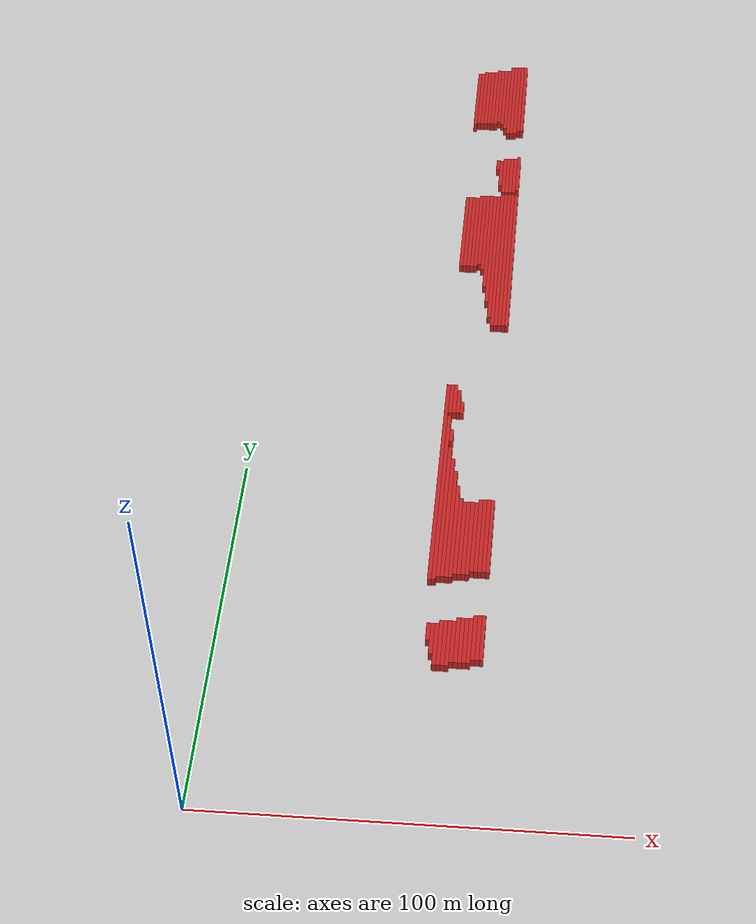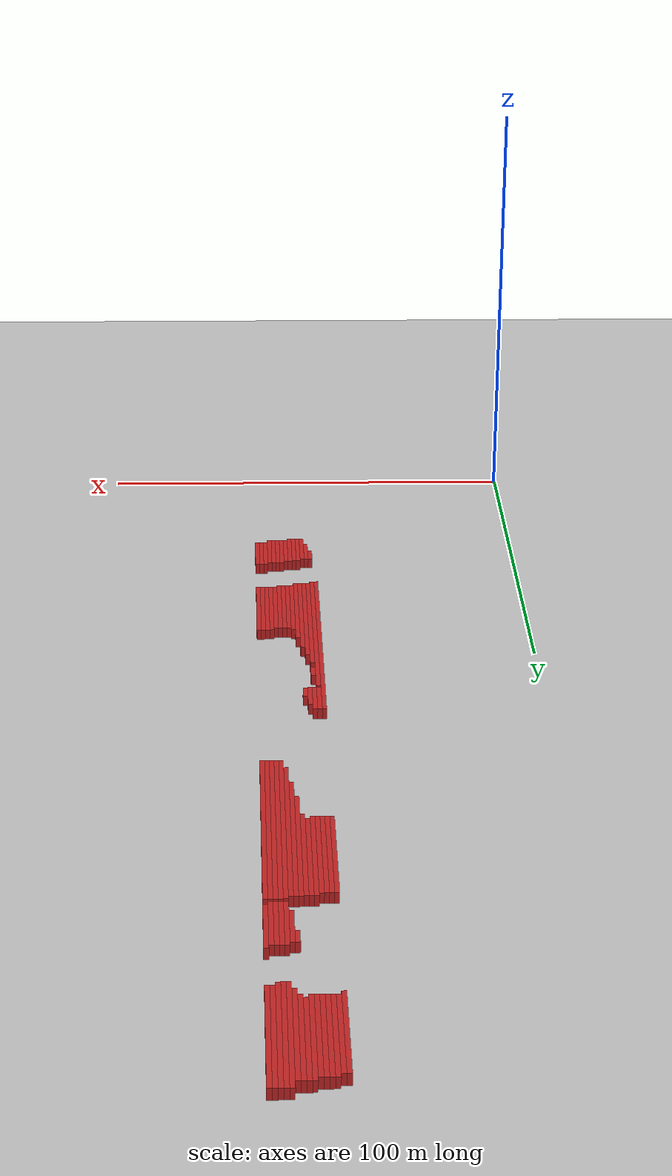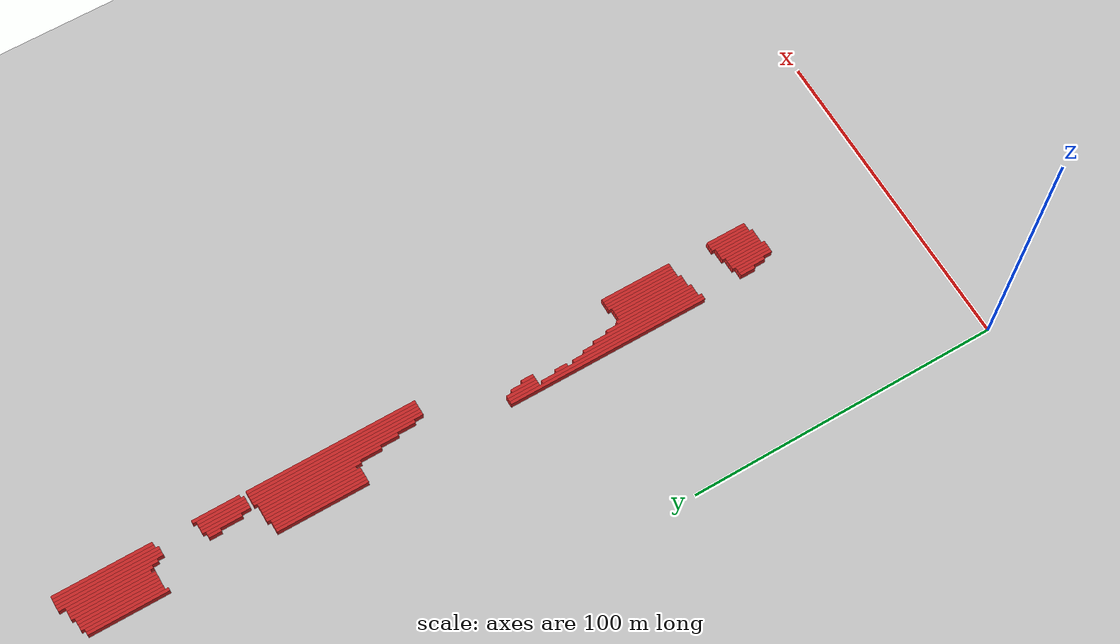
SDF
<sdf version="1.4">
 <world name="1_wall">
  <model name="ground_plane">
   <static>1</static>
   <link name="link">
    <collision name="collision">
     <geometry><plane><normal>0 0 1</normal><size>1000 1000</size></plane></geometry>
     <surface><friction><ode><mu>100</mu><mu2>50</mu2></ode></friction></surface>
    </collision>
    <visual name="visual">
     <cast_shadows>0</cast_shadows>
     <geometry><plane><normal>0 0 1</normal><size>10000 10000</size></plane></geometry>
     <material>
      <script><uri>file://media/materials/scripts/gazebo.material</uri><name>Gazebo/Grey</name></script>
     </material>
    </visual>
    <velocity_decay><linear>0</linear><angular>0</angular></velocity_decay>
   </link>
  </model>
  <model name="Wall_72">
   <static>1</static>
   <link name="Wall_72">
    <collision name="Wall_Collision_72">
     <geometry><box><size>65.0 1.0 2.5</size></box></geometry>
     <pose>0 0 1.25 0 -0 0</pose>
    </collision>
    <visual name="Wall_Visual_72">
     <pose>0 0 1.25 0 -0 0</pose>
     <geometry><box><size>65.0 1.0 2.5</size></box></geometry>
     <material>
      <script><uri>file://media/materials/scripts/gazebo.material</uri><name>Gazebo/Red</name></script>
     </material>
    </visual>
    <velocity_decay><linear>0</linear><angular>0</angular></velocity_decay>
    <pose>49.5 98.5 0 0 0 1.5707963267948966</pose>
   </link>
  </model>
  <model name="Wall_73">
   <static>1</static>
   <link name="Wall_73">
    <collision name="Wall_Collision_73">
     <geometry><box><size>29.0 1.0 2.5</size></box></geometry>
     <pose>0 0 1.25 0 -0 0</pose>
    </collision>
    <visual name="Wall_Visual_73">
     <pose>0 0 1.25 0 -0 0</pose>
     <geometry><box><size>29.0 1.0 2.5</size></box></geometry>
     <material>
      <script><uri>file://media/materials/scripts/gazebo.material</uri><name>Gazebo/Red</name></script>
     </material>
    </visual>
    <velocity_decay><linear>0</linear><angular>0</angular></velocity_decay>
    <pose>49.5 191.5 0 0 0 1.5707963267948966</pose>
   </link>
  </model>
  <model name="Wall_74">
   <static>1</static>
   <link name="Wall_74">
    <collision name="Wall_Collision_74">
     <geometry><box><size>25.0 1.0 2.5</size></box></geometry>
     <pose>0 0 1.25 0 -0 0</pose>
    </collision>
    <visual name="Wall_Visual_74">
     <pose>0 0 1.25 0 -0 0</pose>
     <geometry><box><size>25.0 1.0 2.5</size></box></geometry>
     <material>
      <script><uri>file://media/materials/scripts/gazebo.material</uri><name>Gazebo/Red</name></script>
     </material>
    </visual>
    <velocity_decay><linear>0</linear><angular>0</angular></velocity_decay>
    <pose>49.5 251.5 0 0 0 1.5707963267948966</pose>
   </link>
  </model>
  <model name="Wall_75">
   <static>1</static>
   <link name="Wall_75">
    <collision name="Wall_Collision_75">
     <geometry><box><size>5.0 1.0 2.5</size></box></geometry>
     <pose>0 0 1.25 0 -0 0</pose>
    </collision>
    <visual name="Wall_Visual_75">
     <pose>0 0 1.25 0 -0 0</pose>
     <geometry><box><size>5.0 1.0 2.5</size></box></geometry>
     <material>
      <script><uri>file://media/materials/scripts/gazebo.material</uri><name>Gazebo/Red</name></script>
     </material>
    </visual>
    <velocity_decay><linear>0</linear><angular>0</angular></velocity_decay>
    <pose>50.5 50.5 0 0 0 1.5707963267948966</pose>
   </link>
  </model>
  <model name="Wall_76">
   <static>1</static>
   <link name="Wall_76">
    <collision name="Wall_Collision_76">
     <geometry><box><size>54.0 1.0 2.5</size></box></geometry>
     <pose>0 0 1.25 0 -0 0</pose>
    </collision>
    <visual name="Wall_Visual_76">
     <pose>0 0 1.25 0 -0 0</pose>
     <geometry><box><size>54.0 1.0 2.5</size></box></geometry>
     <material>
      <script><uri>file://media/materials/scripts/gazebo.material</uri><name>Gazebo/Red</name></script>
     </material>
    </visual>
    <velocity_decay><linear>0</linear><angular>0</angular></velocity_decay>
    <pose>50.5 93.0 0 0 0 1.5707963267948966</pose>
   </link>
  </model>
  <model name="Wall_77">
   <static>1</static>
   <link name="Wall_77">
    <collision name="Wall_Collision_77">
     <geometry><box><size>10.0 1.0 2.5</size></box></geometry>
     <pose>0 0 1.25 0 -0 0</pose>
    </collision>
    <visual name="Wall_Visual_77">
     <pose>0 0 1.25 0 -0 0</pose>
     <geometry><box><size>10.0 1.0 2.5</size></box></geometry>
     <material>
      <script><uri>file://media/materials/scripts/gazebo.material</uri><name>Gazebo/Red</name></script>
     </material>
    </visual>
    <velocity_decay><linear>0</linear><angular>0</angular></velocity_decay>
    <pose>50.5 126.0 0 0 0 1.5707963267948966</pose>
   </link>
  </model>
  <model name="Wall_78">
   <static>1</static>
   <link name="Wall_78">
    <collision name="Wall_Collision_78">
     <geometry><box><size>29.0 1.0 2.5</size></box></geometry>
     <pose>0 0 1.25 0 -0 0</pose>
    </collision>
    <visual name="Wall_Visual_78">
     <pose>0 0 1.25 0 -0 0</pose>
     <geometry><box><size>29.0 1.0 2.5</size></box></geometry>
     <material>
      <script><uri>file://media/materials/scripts/gazebo.material</uri><name>Gazebo/Red</name></script>
     </material>
    </visual>
    <velocity_decay><linear>0</linear><angular>0</angular></velocity_decay>
    <pose>50.5 191.5 0 0 0 1.5707963267948966</pose>
   </link>
  </model>
  <model name="Wall_79">
   <static>1</static>
   <link name="Wall_79">
    <collision name="Wall_Collision_79">
     <geometry><box><size>24.0 1.0 2.5</size></box></geometry>
     <pose>0 0 1.25 0 -0 0</pose>
    </collision>
    <visual name="Wall_Visual_79">
     <pose>0 0 1.25 0 -0 0</pose>
     <geometry><box><size>24.0 1.0 2.5</size></box></geometry>
     <material>
      <script><uri>file://media/materials/scripts/gazebo.material</uri><name>Gazebo/Red</name></script>
     </material>
    </visual>
    <velocity_decay><linear>0</linear><angular>0</angular></velocity_decay>
    <pose>50.5 252.0 0 0 0 1.5707963267948966</pose>
   </link>
  </model>
  <model name="Wall_80">
   <static>1</static>
   <link name="Wall_80">
    <collision name="Wall_Collision_80">
     <geometry><box><size>9.0 1.0 2.5</size></box></geometry>
     <pose>0 0 1.25 0 -0 0</pose>
    </collision>
    <visual name="Wall_Visual_80">
     <pose>0 0 1.25 0 -0 0</pose>
     <geometry><box><size>9.0 1.0 2.5</size></box></geometry>
     <material>
      <script><uri>file://media/materials/scripts/gazebo.material</uri><name>Gazebo/Red</name></script>
     </material>
    </visual>
    <velocity_decay><linear>0</linear><angular>0</angular></velocity_decay>
    <pose>51.5 48.5 0 0 0 1.5707963267948966</pose>
   </link>
  </model>
  <model name="Wall_81">
   <static>1</static>
   <link name="Wall_81">
    <collision name="Wall_Collision_81">
     <geometry><box><size>42.0 1.0 2.5</size></box></geometry>
     <pose>0 0 1.25 0 -0 0</pose>
    </collision>
    <visual name="Wall_Visual_81">
     <pose>0 0 1.25 0 -0 0</pose>
     <geometry><box><size>42.0 1.0 2.5</size></box></geometry>
     <material>
      <script><uri>file://media/materials/scripts/gazebo.material</uri><name>Gazebo/Red</name></script>
     </material>
    </visual>
    <velocity_decay><linear>0</linear><angular>0</angular></velocity_decay>
    <pose>51.5 88.0 0 0 0 1.5707963267948966</pose>
   </link>
  </model>
  <model name="Wall_82">
   <static>1</static>
   <link name="Wall_82">
    <collision name="Wall_Collision_82">
     <geometry><box><size>4.0 1.0 2.5</size></box></geometry>
     <pose>0 0 1.25 0 -0 0</pose>
    </collision>
    <visual name="Wall_Visual_82">
     <pose>0 0 1.25 0 -0 0</pose>
     <geometry><box><size>4.0 1.0 2.5</size></box></geometry>
     <material>
      <script><uri>file://media/materials/scripts/gazebo.material</uri><name>Gazebo/Red</name></script>
     </material>
    </visual>
    <velocity_decay><linear>0</linear><angular>0</angular></velocity_decay>
    <pose>51.5 113.0 0 0 0 1.5707963267948966</pose>
   </link>
  </model>
  <model name="Wall_83">
   <static>1</static>
   <link name="Wall_83">
    <collision name="Wall_Collision_83">
     <geometry><box><size>10.0 1.0 2.5</size></box></geometry>
     <pose>0 0 1.25 0 -0 0</pose>
    </collision>
    <visual name="Wall_Visual_83">
     <pose>0 0 1.25 0 -0 0</pose>
     <geometry><box><size>10.0 1.0 2.5</size></box></geometry>
     <material>
      <script><uri>file://media/materials/scripts/gazebo.material</uri><name>Gazebo/Red</name></script>
     </material>
    </visual>
    <velocity_decay><linear>0</linear><angular>0</angular></velocity_decay>
    <pose>51.5 126.0 0 0 0 1.5707963267948966</pose>
   </link>
  </model>
  <model name="Wall_84">
   <static>1</static>
   <link name="Wall_84">
    <collision name="Wall_Collision_84">
     <geometry><box><size>29.0 1.0 2.5</size></box></geometry>
     <pose>0 0 1.25 0 -0 0</pose>
    </collision>
    <visual name="Wall_Visual_84">
     <pose>0 0 1.25 0 -0 0</pose>
     <geometry><box><size>29.0 1.0 2.5</size></box></geometry>
     <material>
      <script><uri>file://media/materials/scripts/gazebo.material</uri><name>Gazebo/Red</name></script>
     </material>
    </visual>
    <velocity_decay><linear>0</linear><angular>0</angular></velocity_decay>
    <pose>51.5 191.5 0 0 0 1.5707963267948966</pose>
   </link>
  </model>
  <model name="Wall_85">
   <static>1</static>
   <link name="Wall_85">
    <collision name="Wall_Collision_85">
     <geometry><box><size>25.0 1.0 2.5</size></box></geometry>
     <pose>0 0 1.25 0 -0 0</pose>
    </collision>
    <visual name="Wall_Visual_85">
     <pose>0 0 1.25 0 -0 0</pose>
     <geometry><box><size>25.0 1.0 2.5</size></box></geometry>
     <material>
      <script><uri>file://media/materials/scripts/gazebo.material</uri><name>Gazebo/Red</name></script>
     </material>
    </visual>
    <velocity_decay><linear>0</linear><angular>0</angular></velocity_decay>
    <pose>51.5 252.5 0 0 0 1.5707963267948966</pose>
   </link>
  </model>
  <model name="Wall_86">
   <static>1</static>
   <link name="Wall_86">
    <collision name="Wall_Collision_86">
     <geometry><box><size>12.0 1.0 2.5</size></box></geometry>
     <pose>0 0 1.25 0 -0 0</pose>
    </collision>
    <visual name="Wall_Visual_86">
     <pose>0 0 1.25 0 -0 0</pose>
     <geometry><box><size>12.0 1.0 2.5</size></box></geometry>
     <material>
      <script><uri>file://media/materials/scripts/gazebo.material</uri><name>Gazebo/Red</name></script>
     </material>
    </visual>
    <velocity_decay><linear>0</linear><angular>0</angular></velocity_decay>
    <pose>52.5 47.0 0 0 0 1.5707963267948966</pose>
   </link>
  </model>
  <model name="Wall_87">
   <static>1</static>
   <link name="Wall_87">
    <collision name="Wall_Collision_87">
     <geometry><box><size>38.0 1.0 2.5</size></box></geometry>
     <pose>0 0 1.25 0 -0 0</pose>
    </collision>
    <visual name="Wall_Visual_87">
     <pose>0 0 1.25 0 -0 0</pose>
     <geometry><box><size>38.0 1.0 2.5</size></box></geometry>
     <material>
      <script><uri>file://media/materials/scripts/gazebo.material</uri><name>Gazebo/Red</name></script>
     </material>
    </visual>
    <velocity_decay><linear>0</linear><angular>0</angular></velocity_decay>
    <pose>52.5 86.0 0 0 0 1.5707963267948966</pose>
   </link>
  </model>
  <model name="Wall_88">
   <static>1</static>
   <link name="Wall_88">
    <collision name="Wall_Collision_88">
     <geometry><box><size>8.0 1.0 2.5</size></box></geometry>
     <pose>0 0 1.25 0 -0 0</pose>
    </collision>
    <visual name="Wall_Visual_88">
     <pose>0 0 1.25 0 -0 0</pose>
     <geometry><box><size>8.0 1.0 2.5</size></box></geometry>
     <material>
      <script><uri>file://media/materials/scripts/gazebo.material</uri><name>Gazebo/Red</name></script>
     </material>
    </visual>
    <velocity_decay><linear>0</linear><angular>0</angular></velocity_decay>
    <pose>52.5 125.0 0 0 0 1.5707963267948966</pose>
   </link>
  </model>
  <model name="Wall_89">
   <static>1</static>
   <link name="Wall_89">
    <collision name="Wall_Collision_89">
     <geometry><box><size>29.0 1.0 2.5</size></box></geometry>
     <pose>0 0 1.25 0 -0 0</pose>
    </collision>
    <visual name="Wall_Visual_89">
     <pose>0 0 1.25 0 -0 0</pose>
     <geometry><box><size>29.0 1.0 2.5</size></box></geometry>
     <material>
      <script><uri>file://media/materials/scripts/gazebo.material</uri><name>Gazebo/Red</name></script>
     </material>
    </visual>
    <velocity_decay><linear>0</linear><angular>0</angular></velocity_decay>
    <pose>52.5 191.5 0 0 0 1.5707963267948966</pose>
   </link>
  </model>
  <model name="Wall_90">
   <static>1</static>
   <link name="Wall_90">
    <collision name="Wall_Collision_90">
     <geometry><box><size>25.0 1.0 2.5</size></box></geometry>
     <pose>0 0 1.25 0 -0 0</pose>
    </collision>
    <visual name="Wall_Visual_90">
     <pose>0 0 1.25 0 -0 0</pose>
     <geometry><box><size>25.0 1.0 2.5</size></box></geometry>
     <material>
      <script><uri>file://media/materials/scripts/gazebo.material</uri><name>Gazebo/Red</name></script>
     </material>
    </visual>
    <velocity_decay><linear>0</linear><angular>0</angular></velocity_decay>
    <pose>52.5 252.5 0 0 0 1.5707963267948966</pose>
   </link>
  </model>
  <model name="Wall_91">
   <static>1</static>
   <link name="Wall_91">
    <collision name="Wall_Collision_91">
     <geometry><box><size>13.0 1.0 2.5</size></box></geometry>
     <pose>0 0 1.25 0 -0 0</pose>
    </collision>
    <visual name="Wall_Visual_91">
     <pose>0 0 1.25 0 -0 0</pose>
     <geometry><box><size>13.0 1.0 2.5</size></box></geometry>
     <material>
      <script><uri>file://media/materials/scripts/gazebo.material</uri><name>Gazebo/Red</name></script>
     </material>
    </visual>
    <velocity_decay><linear>0</linear><angular>0</angular></velocity_decay>
    <pose>53.5 47.5 0 0 0 1.5707963267948966</pose>
   </link>
  </model>
  <model name="Wall_92">
   <static>1</static>
   <link name="Wall_92">
    <collision name="Wall_Collision_92">
     <geometry><box><size>34.0 1.0 2.5</size></box></geometry>
     <pose>0 0 1.25 0 -0 0</pose>
    </collision>
    <visual name="Wall_Visual_92">
     <pose>0 0 1.25 0 -0 0</pose>
     <geometry><box><size>34.0 1.0 2.5</size></box></geometry>
     <material>
      <script><uri>file://media/materials/scripts/gazebo.material</uri><name>Gazebo/Red</name></script>
     </material>
    </visual>
    <velocity_decay><linear>0</linear><angular>0</angular></velocity_decay>
    <pose>53.5 84.0 0 0 0 1.5707963267948966</pose>
   </link>
  </model>
  <model name="Wall_93">
   <static>1</static>
   <link name="Wall_93">
    <collision name="Wall_Collision_93">
     <geometry><box><size>4.0 1.0 2.5</size></box></geometry>
     <pose>0 0 1.25 0 -0 0</pose>
    </collision>
    <visual name="Wall_Visual_93">
     <pose>0 0 1.25 0 -0 0</pose>
     <geometry><box><size>4.0 1.0 2.5</size></box></geometry>
     <material>
      <script><uri>file://media/materials/scripts/gazebo.material</uri><name>Gazebo/Red</name></script>
     </material>
    </visual>
    <velocity_decay><linear>0</linear><angular>0</angular></velocity_decay>
    <pose>53.5 123.0 0 0 0 1.5707963267948966</pose>
   </link>
  </model>
  <model name="Wall_94">
   <static>1</static>
   <link name="Wall_94">
    <collision name="Wall_Collision_94">
     <geometry><box><size>30.0 1.0 2.5</size></box></geometry>
     <pose>0 0 1.25 0 -0 0</pose>
    </collision>
    <visual name="Wall_Visual_94">
     <pose>0 0 1.25 0 -0 0</pose>
     <geometry><box><size>30.0 1.0 2.5</size></box></geometry>
     <material>
      <script><uri>file://media/materials/scripts/gazebo.material</uri><name>Gazebo/Red</name></script>
     </material>
    </visual>
    <velocity_decay><linear>0</linear><angular>0</angular></velocity_decay>
    <pose>53.5 192.0 0 0 0 1.5707963267948966</pose>
   </link>
  </model>
  <model name="Wall_95">
   <static>1</static>
   <link name="Wall_95">
    <collision name="Wall_Collision_95">
     <geometry><box><size>25.0 1.0 2.5</size></box></geometry>
     <pose>0 0 1.25 0 -0 0</pose>
    </collision>
    <visual name="Wall_Visual_95">
     <pose>0 0 1.25 0 -0 0</pose>
     <geometry><box><size>25.0 1.0 2.5</size></box></geometry>
     <material>
      <script><uri>file://media/materials/scripts/gazebo.material</uri><name>Gazebo/Red</name></script>
     </material>
    </visual>
    <velocity_decay><linear>0</linear><angular>0</angular></velocity_decay>
    <pose>53.5 252.5 0 0 0 1.5707963267948966</pose>
   </link>
  </model>
  <model name="Wall_96">
   <static>1</static>
   <link name="Wall_96">
    <collision name="Wall_Collision_96">
     <geometry><box><size>13.0 1.0 2.5</size></box></geometry>
     <pose>0 0 1.25 0 -0 0</pose>
    </collision>
    <visual name="Wall_Visual_96">
     <pose>0 0 1.25 0 -0 0</pose>
     <geometry><box><size>13.0 1.0 2.5</size></box></geometry>
     <material>
      <script><uri>file://media/materials/scripts/gazebo.material</uri><name>Gazebo/Red</name></script>
     </material>
    </visual>
    <velocity_decay><linear>0</linear><angular>0</angular></velocity_decay>
    <pose>54.5 47.5 0 0 0 1.5707963267948966</pose>
   </link>
  </model>
  <model name="Wall_97">
   <static>1</static>
   <link name="Wall_97">
    <collision name="Wall_Collision_97">
     <geometry><box><size>29.0 1.0 2.5</size></box></geometry>
     <pose>0 0 1.25 0 -0 0</pose>
    </collision>
    <visual name="Wall_Visual_97">
     <pose>0 0 1.25 0 -0 0</pose>
     <geometry><box><size>29.0 1.0 2.5</size></box></geometry>
     <material>
      <script><uri>file://media/materials/scripts/gazebo.material</uri><name>Gazebo/Red</name></script>
     </material>
    </visual>
    <velocity_decay><linear>0</linear><angular>0</angular></velocity_decay>
    <pose>54.5 81.5 0 0 0 1.5707963267948966</pose>
   </link>
  </model>
  <model name="Wall_98">
   <static>1</static>
   <link name="Wall_98">
    <collision name="Wall_Collision_98">
     <geometry><box><size>29.0 1.0 2.5</size></box></geometry>
     <pose>0 0 1.25 0 -0 0</pose>
    </collision>
    <visual name="Wall_Visual_98">
     <pose>0 0 1.25 0 -0 0</pose>
     <geometry><box><size>29.0 1.0 2.5</size></box></geometry>
     <material>
      <script><uri>file://media/materials/scripts/gazebo.material</uri><name>Gazebo/Red</name></script>
     </material>
    </visual>
    <velocity_decay><linear>0</linear><angular>0</angular></velocity_decay>
    <pose>54.5 192.5 0 0 0 1.5707963267948966</pose>
   </link>
  </model>
  <model name="Wall_99">
   <static>1</static>
   <link name="Wall_99">
    <collision name="Wall_Collision_99">
     <geometry><box><size>25.0 1.0 2.5</size></box></geometry>
     <pose>0 0 1.25 0 -0 0</pose>
    </collision>
    <visual name="Wall_Visual_99">
     <pose>0 0 1.25 0 -0 0</pose>
     <geometry><box><size>25.0 1.0 2.5</size></box></geometry>
     <material>
      <script><uri>file://media/materials/scripts/gazebo.material</uri><name>Gazebo/Red</name></script>
     </material>
    </visual>
    <velocity_decay><linear>0</linear><angular>0</angular></velocity_decay>
    <pose>54.5 252.5 0 0 0 1.5707963267948966</pose>
   </link>
  </model>
  <model name="Wall_100">
   <static>1</static>
   <link name="Wall_100">
    <collision name="Wall_Collision_100">
     <geometry><box><size>13.0 1.0 2.5</size></box></geometry>
     <pose>0 0 1.25 0 -0 0</pose>
    </collision>
    <visual name="Wall_Visual_100">
     <pose>0 0 1.25 0 -0 0</pose>
     <geometry><box><size>13.0 1.0 2.5</size></box></geometry>
     <material>
      <script><uri>file://media/materials/scripts/gazebo.material</uri><name>Gazebo/Red</name></script>
     </material>
    </visual>
    <velocity_decay><linear>0</linear><angular>0</angular></velocity_decay>
    <pose>55.5 47.5 0 0 0 1.5707963267948966</pose>
   </link>
  </model>
  <model name="Wall_101">
   <static>1</static>
   <link name="Wall_101">
    <collision name="Wall_Collision_101">
     <geometry><box><size>24.0 1.0 2.5</size></box></geometry>
     <pose>0 0 1.25 0 -0 0</pose>
    </collision>
    <visual name="Wall_Visual_101">
     <pose>0 0 1.25 0 -0 0</pose>
     <geometry><box><size>24.0 1.0 2.5</size></box></geometry>
     <material>
      <script><uri>file://media/materials/scripts/gazebo.material</uri><name>Gazebo/Red</name></script>
     </material>
    </visual>
    <velocity_decay><linear>0</linear><angular>0</angular></velocity_decay>
    <pose>55.5 80.0 0 0 0 1.5707963267948966</pose>
   </link>
  </model>
  <model name="Wall_102">
   <static>1</static>
   <link name="Wall_102">
    <collision name="Wall_Collision_102">
     <geometry><box><size>31.0 1.0 2.5</size></box></geometry>
     <pose>0 0 1.25 0 -0 0</pose>
    </collision>
    <visual name="Wall_Visual_102">
     <pose>0 0 1.25 0 -0 0</pose>
     <geometry><box><size>31.0 1.0 2.5</size></box></geometry>
     <material>
      <script><uri>file://media/materials/scripts/gazebo.material</uri><name>Gazebo/Red</name></script>
     </material>
    </visual>
    <velocity_decay><linear>0</linear><angular>0</angular></velocity_decay>
    <pose>55.5 191.5 0 0 0 1.5707963267948966</pose>
   </link>
  </model>
  <model name="Wall_103">
   <static>1</static>
   <link name="Wall_103">
    <collision name="Wall_Collision_103">
     <geometry><box><size>26.0 1.0 2.5</size></box></geometry>
     <pose>0 0 1.25 0 -0 0</pose>
    </collision>
    <visual name="Wall_Visual_103">
     <pose>0 0 1.25 0 -0 0</pose>
     <geometry><box><size>26.0 1.0 2.5</size></box></geometry>
     <material>
      <script><uri>file://media/materials/scripts/gazebo.material</uri><name>Gazebo/Red</name></script>
     </material>
    </visual>
    <velocity_decay><linear>0</linear><angular>0</angular></velocity_decay>
    <pose>55.5 253.0 0 0 0 1.5707963267948966</pose>
   </link>
  </model>
  <model name="Wall_104">
   <static>1</static>
   <link name="Wall_104">
    <collision name="Wall_Collision_104">
     <geometry><box><size>12.0 1.0 2.5</size></box></geometry>
     <pose>0 0 1.25 0 -0 0</pose>
    </collision>
    <visual name="Wall_Visual_104">
     <pose>0 0 1.25 0 -0 0</pose>
     <geometry><box><size>12.0 1.0 2.5</size></box></geometry>
     <material>
      <script><uri>file://media/materials/scripts/gazebo.material</uri><name>Gazebo/Red</name></script>
     </material>
    </visual>
    <velocity_decay><linear>0</linear><angular>0</angular></velocity_decay>
    <pose>56.5 48.0 0 0 0 1.5707963267948966</pose>
   </link>
  </model>
  <model name="Wall_105">
   <static>1</static>
   <link name="Wall_105">
    <collision name="Wall_Collision_105">
     <geometry><box><size>23.0 1.0 2.5</size></box></geometry>
     <pose>0 0 1.25 0 -0 0</pose>
    </collision>
    <visual name="Wall_Visual_105">
     <pose>0 0 1.25 0 -0 0</pose>
     <geometry><box><size>23.0 1.0 2.5</size></box></geometry>
     <material>
      <script><uri>file://media/materials/scripts/gazebo.material</uri><name>Gazebo/Red</name></script>
     </material>
    </visual>
    <velocity_decay><linear>0</linear><angular>0</angular></velocity_decay>
    <pose>56.5 79.5 0 0 0 1.5707963267948966</pose>
   </link>
  </model>
  <model name="Wall_106">
   <static>1</static>
   <link name="Wall_106">
    <collision name="Wall_Collision_106">
     <geometry><box><size>38.0 1.0 2.5</size></box></geometry>
     <pose>0 0 1.25 0 -0 0</pose>
    </collision>
    <visual name="Wall_Visual_106">
     <pose>0 0 1.25 0 -0 0</pose>
     <geometry><box><size>38.0 1.0 2.5</size></box></geometry>
     <material>
      <script><uri>file://media/materials/scripts/gazebo.material</uri><name>Gazebo/Red</name></script>
     </material>
    </visual>
    <velocity_decay><linear>0</linear><angular>0</angular></velocity_decay>
    <pose>56.5 188.0 0 0 0 1.5707963267948966</pose>
   </link>
  </model>
  <model name="Wall_107">
   <static>1</static>
   <link name="Wall_107">
    <collision name="Wall_Collision_107">
     <geometry><box><size>25.0 1.0 2.5</size></box></geometry>
     <pose>0 0 1.25 0 -0 0</pose>
    </collision>
    <visual name="Wall_Visual_107">
     <pose>0 0 1.25 0 -0 0</pose>
     <geometry><box><size>25.0 1.0 2.5</size></box></geometry>
     <material>
      <script><uri>file://media/materials/scripts/gazebo.material</uri><name>Gazebo/Red</name></script>
     </material>
    </visual>
    <velocity_decay><linear>0</linear><angular>0</angular></velocity_decay>
    <pose>56.5 253.5 0 0 0 1.5707963267948966</pose>
   </link>
  </model>
  <model name="Wall_108">
   <static>1</static>
   <link name="Wall_108">
    <collision name="Wall_Collision_108">
     <geometry><box><size>13.0 1.0 2.5</size></box></geometry>
     <pose>0 0 1.25 0 -0 0</pose>
    </collision>
    <visual name="Wall_Visual_108">
     <pose>0 0 1.25 0 -0 0</pose>
     <geometry><box><size>13.0 1.0 2.5</size></box></geometry>
     <material>
      <script><uri>file://media/materials/scripts/gazebo.material</uri><name>Gazebo/Red</name></script>
     </material>
    </visual>
    <velocity_decay><linear>0</linear><angular>0</angular></velocity_decay>
    <pose>57.5 48.5 0 0 0 1.5707963267948966</pose>
   </link>
  </model>
  <model name="Wall_109">
   <static>1</static>
   <link name="Wall_109">
    <collision name="Wall_Collision_109">
     <geometry><box><size>23.0 1.0 2.5</size></box></geometry>
     <pose>0 0 1.25 0 -0 0</pose>
    </collision>
    <visual name="Wall_Visual_109">
     <pose>0 0 1.25 0 -0 0</pose>
     <geometry><box><size>23.0 1.0 2.5</size></box></geometry>
     <material>
      <script><uri>file://media/materials/scripts/gazebo.material</uri><name>Gazebo/Red</name></script>
     </material>
    </visual>
    <velocity_decay><linear>0</linear><angular>0</angular></velocity_decay>
    <pose>57.5 79.5 0 0 0 1.5707963267948966</pose>
   </link>
  </model>
  <model name="Wall_110">
   <static>1</static>
   <link name="Wall_110">
    <collision name="Wall_Collision_110">
     <geometry><box><size>44.0 1.0 2.5</size></box></geometry>
     <pose>0 0 1.25 0 -0 0</pose>
    </collision>
    <visual name="Wall_Visual_110">
     <pose>0 0 1.25 0 -0 0</pose>
     <geometry><box><size>44.0 1.0 2.5</size></box></geometry>
     <material>
      <script><uri>file://media/materials/scripts/gazebo.material</uri><name>Gazebo/Red</name></script>
     </material>
    </visual>
    <velocity_decay><linear>0</linear><angular>0</angular></velocity_decay>
    <pose>57.5 185.0 0 0 0 1.5707963267948966</pose>
   </link>
  </model>
  <model name="Wall_111">
   <static>1</static>
   <link name="Wall_111">
    <collision name="Wall_Collision_111">
     <geometry><box><size>4.0 1.0 2.5</size></box></geometry>
     <pose>0 0 1.25 0 -0 0</pose>
    </collision>
    <visual name="Wall_Visual_111">
     <pose>0 0 1.25 0 -0 0</pose>
     <geometry><box><size>4.0 1.0 2.5</size></box></geometry>
     <material>
      <script><uri>file://media/materials/scripts/gazebo.material</uri><name>Gazebo/Red</name></script>
     </material>
    </visual>
    <velocity_decay><linear>0</linear><angular>0</angular></velocity_decay>
    <pose>57.5 221.0 0 0 0 1.5707963267948966</pose>
   </link>
  </model>
  <model name="Wall_112">
   <static>1</static>
   <link name="Wall_112">
    <collision name="Wall_Collision_112">
     <geometry><box><size>26.0 1.0 2.5</size></box></geometry>
     <pose>0 0 1.25 0 -0 0</pose>
    </collision>
    <visual name="Wall_Visual_112">
     <pose>0 0 1.25 0 -0 0</pose>
     <geometry><box><size>26.0 1.0 2.5</size></box></geometry>
     <material>
      <script><uri>file://media/materials/scripts/gazebo.material</uri><name>Gazebo/Red</name></script>
     </material>
    </visual>
    <velocity_decay><linear>0</linear><angular>0</angular></velocity_decay>
    <pose>57.5 253.0 0 0 0 1.5707963267948966</pose>
   </link>
  </model>
  <model name="Wall_113">
   <static>1</static>
   <link name="Wall_113">
    <collision name="Wall_Collision_113">
     <geometry><box><size>13.0 1.0 2.5</size></box></geometry>
     <pose>0 0 1.25 0 -0 0</pose>
    </collision>
    <visual name="Wall_Visual_113">
     <pose>0 0 1.25 0 -0 0</pose>
     <geometry><box><size>13.0 1.0 2.5</size></box></geometry>
     <material>
      <script><uri>file://media/materials/scripts/gazebo.material</uri><name>Gazebo/Red</name></script>
     </material>
    </visual>
    <velocity_decay><linear>0</linear><angular>0</angular></velocity_decay>
    <pose>58.5 48.5 0 0 0 1.5707963267948966</pose>
   </link>
  </model>
  <model name="Wall_114">
   <static>1</static>
   <link name="Wall_114">
    <collision name="Wall_Collision_114">
     <geometry><box><size>23.0 1.0 2.5</size></box></geometry>
     <pose>0 0 1.25 0 -0 0</pose>
    </collision>
    <visual name="Wall_Visual_114">
     <pose>0 0 1.25 0 -0 0</pose>
     <geometry><box><size>23.0 1.0 2.5</size></box></geometry>
     <material>
      <script><uri>file://media/materials/scripts/gazebo.material</uri><name>Gazebo/Red</name></script>
     </material>
    </visual>
    <velocity_decay><linear>0</linear><angular>0</angular></velocity_decay>
    <pose>58.5 79.5 0 0 0 1.5707963267948966</pose>
   </link>
  </model>
  <model name="Wall_115">
   <static>1</static>
   <link name="Wall_115">
    <collision name="Wall_Collision_115">
     <geometry><box><size>50.0 1.0 2.5</size></box></geometry>
     <pose>0 0 1.25 0 -0 0</pose>
    </collision>
    <visual name="Wall_Visual_115">
     <pose>0 0 1.25 0 -0 0</pose>
     <geometry><box><size>50.0 1.0 2.5</size></box></geometry>
     <material>
      <script><uri>file://media/materials/scripts/gazebo.material</uri><name>Gazebo/Red</name></script>
     </material>
    </visual>
    <velocity_decay><linear>0</linear><angular>0</angular></velocity_decay>
    <pose>58.5 182.0 0 0 0 1.5707963267948966</pose>
   </link>
  </model>
  <model name="Wall_116">
   <static>1</static>
   <link name="Wall_116">
    <collision name="Wall_Collision_116">
     <geometry><box><size>11.0 1.0 2.5</size></box></geometry>
     <pose>0 0 1.25 0 -0 0</pose>
    </collision>
    <visual name="Wall_Visual_116">
     <pose>0 0 1.25 0 -0 0</pose>
     <geometry><box><size>11.0 1.0 2.5</size></box></geometry>
     <material>
      <script><uri>file://media/materials/scripts/gazebo.material</uri><name>Gazebo/Red</name></script>
     </material>
    </visual>
    <velocity_decay><linear>0</linear><angular>0</angular></velocity_decay>
    <pose>58.5 217.5 0 0 0 1.5707963267948966</pose>
   </link>
  </model>
  <model name="Wall_117">
   <static>1</static>
   <link name="Wall_117">
    <collision name="Wall_Collision_117">
     <geometry><box><size>28.0 1.0 2.5</size></box></geometry>
     <pose>0 0 1.25 0 -0 0</pose>
    </collision>
    <visual name="Wall_Visual_117">
     <pose>0 0 1.25 0 -0 0</pose>
     <geometry><box><size>28.0 1.0 2.5</size></box></geometry>
     <material>
      <script><uri>file://media/materials/scripts/gazebo.material</uri><name>Gazebo/Red</name></script>
     </material>
    </visual>
    <velocity_decay><linear>0</linear><angular>0</angular></velocity_decay>
    <pose>58.5 252.0 0 0 0 1.5707963267948966</pose>
   </link>
  </model>
  <model name="Wall_118">
   <static>1</static>
   <link name="Wall_118">
    <collision name="Wall_Collision_118">
     <geometry><box><size>13.0 1.0 2.5</size></box></geometry>
     <pose>0 0 1.25 0 -0 0</pose>
    </collision>
    <visual name="Wall_Visual_118">
     <pose>0 0 1.25 0 -0 0</pose>
     <geometry><box><size>13.0 1.0 2.5</size></box></geometry>
     <material>
      <script><uri>file://media/materials/scripts/gazebo.material</uri><name>Gazebo/Red</name></script>
     </material>
    </visual>
    <velocity_decay><linear>0</linear><angular>0</angular></velocity_decay>
    <pose>59.5 48.5 0 0 0 1.5707963267948966</pose>
   </link>
  </model>
  <model name="Wall_119">
   <static>1</static>
   <link name="Wall_119">
    <collision name="Wall_Collision_119">
     <geometry><box><size>22.0 1.0 2.5</size></box></geometry>
     <pose>0 0 1.25 0 -0 0</pose>
    </collision>
    <visual name="Wall_Visual_119">
     <pose>0 0 1.25 0 -0 0</pose>
     <geometry><box><size>22.0 1.0 2.5</size></box></geometry>
     <material>
      <script><uri>file://media/materials/scripts/gazebo.material</uri><name>Gazebo/Red</name></script>
     </material>
    </visual>
    <velocity_decay><linear>0</linear><angular>0</angular></velocity_decay>
    <pose>59.5 80.0 0 0 0 1.5707963267948966</pose>
   </link>
  </model>
  <model name="Wall_120">
   <static>1</static>
   <link name="Wall_120">
    <collision name="Wall_Collision_120">
     <geometry><box><size>54.0 1.0 2.5</size></box></geometry>
     <pose>0 0 1.25 0 -0 0</pose>
    </collision>
    <visual name="Wall_Visual_120">
     <pose>0 0 1.25 0 -0 0</pose>
     <geometry><box><size>54.0 1.0 2.5</size></box></geometry>
     <material>
      <script><uri>file://media/materials/scripts/gazebo.material</uri><name>Gazebo/Red</name></script>
     </material>
    </visual>
    <velocity_decay><linear>0</linear><angular>0</angular></velocity_decay>
    <pose>59.5 181.0 0 0 0 1.5707963267948966</pose>
   </link>
  </model>
  <model name="Wall_121">
   <static>1</static>
   <link name="Wall_121">
    <collision name="Wall_Collision_121">
     <geometry><box><size>15.0 1.0 2.5</size></box></geometry>
     <pose>0 0 1.25 0 -0 0</pose>
    </collision>
    <visual name="Wall_Visual_121">
     <pose>0 0 1.25 0 -0 0</pose>
     <geometry><box><size>15.0 1.0 2.5</size></box></geometry>
     <material>
      <script><uri>file://media/materials/scripts/gazebo.material</uri><name>Gazebo/Red</name></script>
     </material>
    </visual>
    <velocity_decay><linear>0</linear><angular>0</angular></velocity_decay>
    <pose>59.5 216.5 0 0 0 1.5707963267948966</pose>
   </link>
  </model>
  <model name="Wall_122">
   <static>1</static>
   <link name="Wall_122">
    <collision name="Wall_Collision_122">
     <geometry><box><size>32.0 1.0 2.5</size></box></geometry>
     <pose>0 0 1.25 0 -0 0</pose>
    </collision>
    <visual name="Wall_Visual_122">
     <pose>0 0 1.25 0 -0 0</pose>
     <geometry><box><size>32.0 1.0 2.5</size></box></geometry>
     <material>
      <script><uri>file://media/materials/scripts/gazebo.material</uri><name>Gazebo/Red</name></script>
     </material>
    </visual>
    <velocity_decay><linear>0</linear><angular>0</angular></velocity_decay>
    <pose>59.5 252.0 0 0 0 1.5707963267948966</pose>
   </link>
  </model>
  <model name="Wall_123">
   <static>1</static>
   <link name="Wall_123">
    <collision name="Wall_Collision_123">
     <geometry><box><size>13.0 1.0 2.5</size></box></geometry>
     <pose>0 0 1.25 0 -0 0</pose>
    </collision>
    <visual name="Wall_Visual_123">
     <pose>0 0 1.25 0 -0 0</pose>
     <geometry><box><size>13.0 1.0 2.5</size></box></geometry>
     <material>
      <script><uri>file://media/materials/scripts/gazebo.material</uri><name>Gazebo/Red</name></script>
     </material>
    </visual>
    <velocity_decay><linear>0</linear><angular>0</angular></velocity_decay>
    <pose>60.5 48.5 0 0 0 1.5707963267948966</pose>
   </link>
  </model>
  <model name="Wall_124">
   <static>1</static>
   <link name="Wall_124">
    <collision name="Wall_Collision_124">
     <geometry><box><size>23.0 1.0 2.5</size></box></geometry>
     <pose>0 0 1.25 0 -0 0</pose>
    </collision>
    <visual name="Wall_Visual_124">
     <pose>0 0 1.25 0 -0 0</pose>
     <geometry><box><size>23.0 1.0 2.5</size></box></geometry>
     <material>
      <script><uri>file://media/materials/scripts/gazebo.material</uri><name>Gazebo/Red</name></script>
     </material>
    </visual>
    <velocity_decay><linear>0</linear><angular>0</angular></velocity_decay>
    <pose>60.5 80.5 0 0 0 1.5707963267948966</pose>
   </link>
  </model>
  <model name="Wall_125">
   <static>1</static>
   <link name="Wall_125">
    <collision name="Wall_Collision_125">
     <geometry><box><size>54.0 1.0 2.5</size></box></geometry>
     <pose>0 0 1.25 0 -0 0</pose>
    </collision>
    <visual name="Wall_Visual_125">
     <pose>0 0 1.25 0 -0 0</pose>
     <geometry><box><size>54.0 1.0 2.5</size></box></geometry>
     <material>
      <script><uri>file://media/materials/scripts/gazebo.material</uri><name>Gazebo/Red</name></script>
     </material>
    </visual>
    <velocity_decay><linear>0</linear><angular>0</angular></velocity_decay>
    <pose>60.5 181.0 0 0 0 1.5707963267948966</pose>
   </link>
  </model>
  <model name="Wall_126">
   <static>1</static>
   <link name="Wall_126">
    <collision name="Wall_Collision_126">
     <geometry><box><size>15.0 1.0 2.5</size></box></geometry>
     <pose>0 0 1.25 0 -0 0</pose>
    </collision>
    <visual name="Wall_Visual_126">
     <pose>0 0 1.25 0 -0 0</pose>
     <geometry><box><size>15.0 1.0 2.5</size></box></geometry>
     <material>
      <script><uri>file://media/materials/scripts/gazebo.material</uri><name>Gazebo/Red</name></script>
     </material>
    </visual>
    <velocity_decay><linear>0</linear><angular>0</angular></velocity_decay>
    <pose>60.5 216.5 0 0 0 1.5707963267948966</pose>
   </link>
  </model>
  <model name="Wall_127">
   <static>1</static>
   <link name="Wall_127">
    <collision name="Wall_Collision_127">
     <geometry><box><size>32.0 1.0 2.5</size></box></geometry>
     <pose>0 0 1.25 0 -0 0</pose>
    </collision>
    <visual name="Wall_Visual_127">
     <pose>0 0 1.25 0 -0 0</pose>
     <geometry><box><size>32.0 1.0 2.5</size></box></geometry>
     <material>
      <script><uri>file://media/materials/scripts/gazebo.material</uri><name>Gazebo/Red</name></script>
     </material>
    </visual>
    <velocity_decay><linear>0</linear><angular>0</angular></velocity_decay>
    <pose>60.5 252.0 0 0 0 1.5707963267948966</pose>
   </link>
  </model>
  <model name="Wall_128">
   <static>1</static>
   <link name="Wall_128">
    <collision name="Wall_Collision_128">
     <geometry><box><size>13.0 1.0 2.5</size></box></geometry>
     <pose>0 0 1.25 0 -0 0</pose>
    </collision>
    <visual name="Wall_Visual_128">
     <pose>0 0 1.25 0 -0 0</pose>
     <geometry><box><size>13.0 1.0 2.5</size></box></geometry>
     <material>
      <script><uri>file://media/materials/scripts/gazebo.material</uri><name>Gazebo/Red</name></script>
     </material>
    </visual>
    <velocity_decay><linear>0</linear><angular>0</angular></velocity_decay>
    <pose>61.5 49.5 0 0 0 1.5707963267948966</pose>
   </link>
  </model>
  <model name="Wall_129">
   <static>1</static>
   <link name="Wall_129">
    <collision name="Wall_Collision_129">
     <geometry><box><size>23.0 1.0 2.5</size></box></geometry>
     <pose>0 0 1.25 0 -0 0</pose>
    </collision>
    <visual name="Wall_Visual_129">
     <pose>0 0 1.25 0 -0 0</pose>
     <geometry><box><size>23.0 1.0 2.5</size></box></geometry>
     <material>
      <script><uri>file://media/materials/scripts/gazebo.material</uri><name>Gazebo/Red</name></script>
     </material>
    </visual>
    <velocity_decay><linear>0</linear><angular>0</angular></velocity_decay>
    <pose>61.5 80.5 0 0 0 1.5707963267948966</pose>
   </link>
  </model>
  <model name="Wall_130">
   <static>1</static>
   <link name="Wall_130">
    <collision name="Wall_Collision_130">
     <geometry><box><size>54.0 1.0 2.5</size></box></geometry>
     <pose>0 0 1.25 0 -0 0</pose>
    </collision>
    <visual name="Wall_Visual_130">
     <pose>0 0 1.25 0 -0 0</pose>
     <geometry><box><size>54.0 1.0 2.5</size></box></geometry>
     <material>
      <script><uri>file://media/materials/scripts/gazebo.material</uri><name>Gazebo/Red</name></script>
     </material>
    </visual>
    <velocity_decay><linear>0</linear><angular>0</angular></velocity_decay>
    <pose>61.5 181.0 0 0 0 1.5707963267948966</pose>
   </link>
  </model>
  <model name="Wall_131">
   <static>1</static>
   <link name="Wall_131">
    <collision name="Wall_Collision_131">
     <geometry><box><size>15.0 1.0 2.5</size></box></geometry>
     <pose>0 0 1.25 0 -0 0</pose>
    </collision>
    <visual name="Wall_Visual_131">
     <pose>0 0 1.25 0 -0 0</pose>
     <geometry><box><size>15.0 1.0 2.5</size></box></geometry>
     <material>
      <script><uri>file://media/materials/scripts/gazebo.material</uri><name>Gazebo/Red</name></script>
     </material>
    </visual>
    <velocity_decay><linear>0</linear><angular>0</angular></velocity_decay>
    <pose>61.5 216.5 0 0 0 1.5707963267948966</pose>
   </link>
  </model>
  <model name="Wall_132">
   <static>1</static>
   <link name="Wall_132">
    <collision name="Wall_Collision_132">
     <geometry><box><size>32.0 1.0 2.5</size></box></geometry>
     <pose>0 0 1.25 0 -0 0</pose>
    </collision>
    <visual name="Wall_Visual_132">
     <pose>0 0 1.25 0 -0 0</pose>
     <geometry><box><size>32.0 1.0 2.5</size></box></geometry>
     <material>
      <script><uri>file://media/materials/scripts/gazebo.material</uri><name>Gazebo/Red</name></script>
     </material>
    </visual>
    <velocity_decay><linear>0</linear><angular>0</angular></velocity_decay>
    <pose>61.5 252.0 0 0 0 1.5707963267948966</pose>
   </link>
  </model>
  <model name="Wall_133">
   <static>1</static>
   <link name="Wall_133">
    <collision name="Wall_Collision_133">
     <geometry><box><size>13.0 1.0 2.5</size></box></geometry>
     <pose>0 0 1.25 0 -0 0</pose>
    </collision>
    <visual name="Wall_Visual_133">
     <pose>0 0 1.25 0 -0 0</pose>
     <geometry><box><size>13.0 1.0 2.5</size></box></geometry>
     <material>
      <script><uri>file://media/materials/scripts/gazebo.material</uri><name>Gazebo/Red</name></script>
     </material>
    </visual>
    <velocity_decay><linear>0</linear><angular>0</angular></velocity_decay>
    <pose>62.5 49.5 0 0 0 1.5707963267948966</pose>
   </link>
  </model>
  <model name="Wall_134">
   <static>1</static>
   <link name="Wall_134">
    <collision name="Wall_Collision_134">
     <geometry><box><size>23.0 1.0 2.5</size></box></geometry>
     <pose>0 0 1.25 0 -0 0</pose>
    </collision>
    <visual name="Wall_Visual_134">
     <pose>0 0 1.25 0 -0 0</pose>
     <geometry><box><size>23.0 1.0 2.5</size></box></geometry>
     <material>
      <script><uri>file://media/materials/scripts/gazebo.material</uri><name>Gazebo/Red</name></script>
     </material>
    </visual>
    <velocity_decay><linear>0</linear><angular>0</angular></velocity_decay>
    <pose>62.5 80.5 0 0 0 1.5707963267948966</pose>
   </link>
  </model>
  <model name="Wall_135">
   <static>1</static>
   <link name="Wall_135">
    <collision name="Wall_Collision_135">
     <geometry><box><size>54.0 1.0 2.5</size></box></geometry>
     <pose>0 0 1.25 0 -0 0</pose>
    </collision>
    <visual name="Wall_Visual_135">
     <pose>0 0 1.25 0 -0 0</pose>
     <geometry><box><size>54.0 1.0 2.5</size></box></geometry>
     <material>
      <script><uri>file://media/materials/scripts/gazebo.material</uri><name>Gazebo/Red</name></script>
     </material>
    </visual>
    <velocity_decay><linear>0</linear><angular>0</angular></velocity_decay>
    <pose>62.5 181.0 0 0 0 1.5707963267948966</pose>
   </link>
  </model>
  <model name="Wall_136">
   <static>1</static>
   <link name="Wall_136">
    <collision name="Wall_Collision_136">
     <geometry><box><size>15.0 1.0 2.5</size></box></geometry>
     <pose>0 0 1.25 0 -0 0</pose>
    </collision>
    <visual name="Wall_Visual_136">
     <pose>0 0 1.25 0 -0 0</pose>
     <geometry><box><size>15.0 1.0 2.5</size></box></geometry>
     <material>
      <script><uri>file://media/materials/scripts/gazebo.material</uri><name>Gazebo/Red</name></script>
     </material>
    </visual>
    <velocity_decay><linear>0</linear><angular>0</angular></velocity_decay>
    <pose>62.5 216.5 0 0 0 1.5707963267948966</pose>
   </link>
  </model>
  <model name="Wall_137">
   <static>1</static>
   <link name="Wall_137">
    <collision name="Wall_Collision_137">
     <geometry><box><size>31.0 1.0 2.5</size></box></geometry>
     <pose>0 0 1.25 0 -0 0</pose>
    </collision>
    <visual name="Wall_Visual_137">
     <pose>0 0 1.25 0 -0 0</pose>
     <geometry><box><size>31.0 1.0 2.5</size></box></geometry>
     <material>
      <script><uri>file://media/materials/scripts/gazebo.material</uri><name>Gazebo/Red</name></script>
     </material>
    </visual>
    <velocity_decay><linear>0</linear><angular>0</angular></velocity_decay>
    <pose>62.5 252.5 0 0 0 1.5707963267948966</pose>
   </link>
  </model>
  <model name="Wall_138">
   <static>1</static>
   <link name="Wall_138">
    <collision name="Wall_Collision_138">
     <geometry><box><size>13.0 1.0 2.5</size></box></geometry>
     <pose>0 0 1.25 0 -0 0</pose>
    </collision>
    <visual name="Wall_Visual_138">
     <pose>0 0 1.25 0 -0 0</pose>
     <geometry><box><size>13.0 1.0 2.5</size></box></geometry>
     <material>
      <script><uri>file://media/materials/scripts/gazebo.material</uri><name>Gazebo/Red</name></script>
     </material>
    </visual>
    <velocity_decay><linear>0</linear><angular>0</angular></velocity_decay>
    <pose>63.5 49.5 0 0 0 1.5707963267948966</pose>
   </link>
  </model>
  <model name="Wall_139">
   <static>1</static>
   <link name="Wall_139">
    <collision name="Wall_Collision_139">
     <geometry><box><size>23.0 1.0 2.5</size></box></geometry>
     <pose>0 0 1.25 0 -0 0</pose>
    </collision>
    <visual name="Wall_Visual_139">
     <pose>0 0 1.25 0 -0 0</pose>
     <geometry><box><size>23.0 1.0 2.5</size></box></geometry>
     <material>
      <script><uri>file://media/materials/scripts/gazebo.material</uri><name>Gazebo/Red</name></script>
     </material>
    </visual>
    <velocity_decay><linear>0</linear><angular>0</angular></velocity_decay>
    <pose>63.5 80.5 0 0 0 1.5707963267948966</pose>
   </link>
  </model>
  <model name="Wall_140">
   <static>1</static>
   <link name="Wall_140">
    <collision name="Wall_Collision_140">
     <geometry><box><size>54.0 1.0 2.5</size></box></geometry>
     <pose>0 0 1.25 0 -0 0</pose>
    </collision>
    <visual name="Wall_Visual_140">
     <pose>0 0 1.25 0 -0 0</pose>
     <geometry><box><size>54.0 1.0 2.5</size></box></geometry>
     <material>
      <script><uri>file://media/materials/scripts/gazebo.material</uri><name>Gazebo/Red</name></script>
     </material>
    </visual>
    <velocity_decay><linear>0</linear><angular>0</angular></velocity_decay>
    <pose>63.5 181.0 0 0 0 1.5707963267948966</pose>
   </link>
  </model>
  <model name="Wall_141">
   <static>1</static>
   <link name="Wall_141">
    <collision name="Wall_Collision_141">
     <geometry><box><size>15.0 1.0 2.5</size></box></geometry>
     <pose>0 0 1.25 0 -0 0</pose>
    </collision>
    <visual name="Wall_Visual_141">
     <pose>0 0 1.25 0 -0 0</pose>
     <geometry><box><size>15.0 1.0 2.5</size></box></geometry>
     <material>
      <script><uri>file://media/materials/scripts/gazebo.material</uri><name>Gazebo/Red</name></script>
     </material>
    </visual>
    <velocity_decay><linear>0</linear><angular>0</angular></velocity_decay>
    <pose>63.5 217.5 0 0 0 1.5707963267948966</pose>
   </link>
  </model>
  <model name="Wall_142">
   <static>1</static>
   <link name="Wall_142">
    <collision name="Wall_Collision_142">
     <geometry><box><size>31.0 1.0 2.5</size></box></geometry>
     <pose>0 0 1.25 0 -0 0</pose>
    </collision>
    <visual name="Wall_Visual_142">
     <pose>0 0 1.25 0 -0 0</pose>
     <geometry><box><size>31.0 1.0 2.5</size></box></geometry>
     <material>
      <script><uri>file://media/materials/scripts/gazebo.material</uri><name>Gazebo/Red</name></script>
     </material>
    </visual>
    <velocity_decay><linear>0</linear><angular>0</angular></velocity_decay>
    <pose>63.5 252.5 0 0 0 1.5707963267948966</pose>
   </link>
  </model>
 </world>
</sdf>
